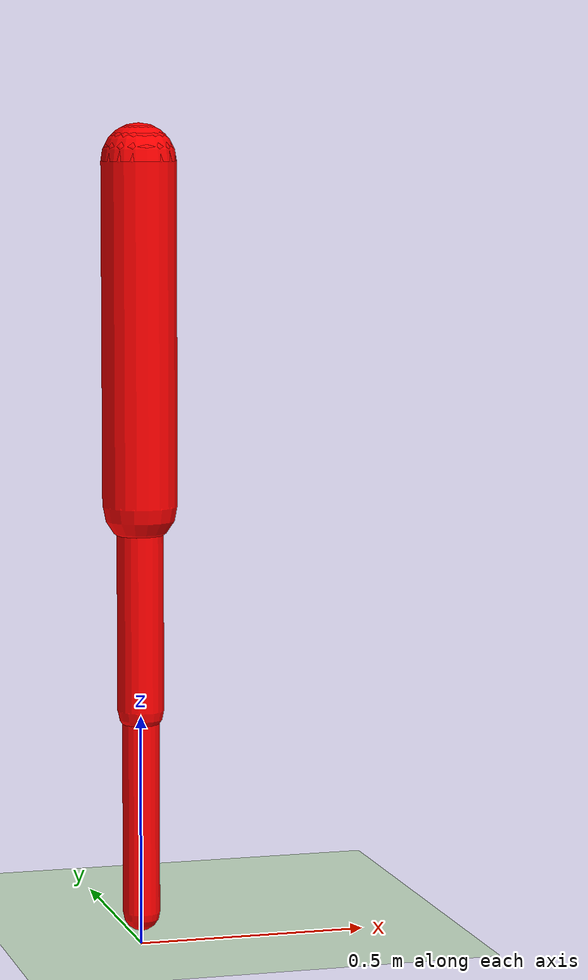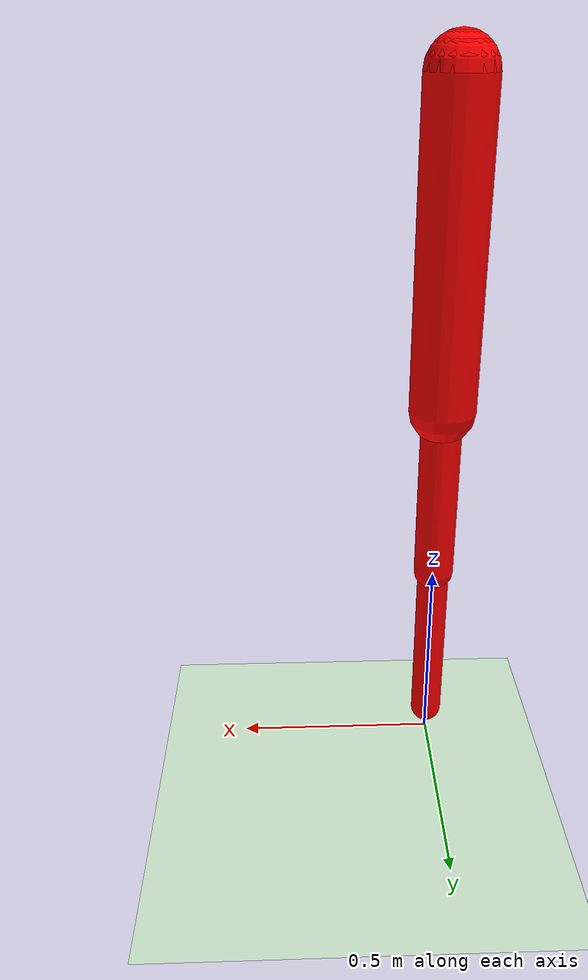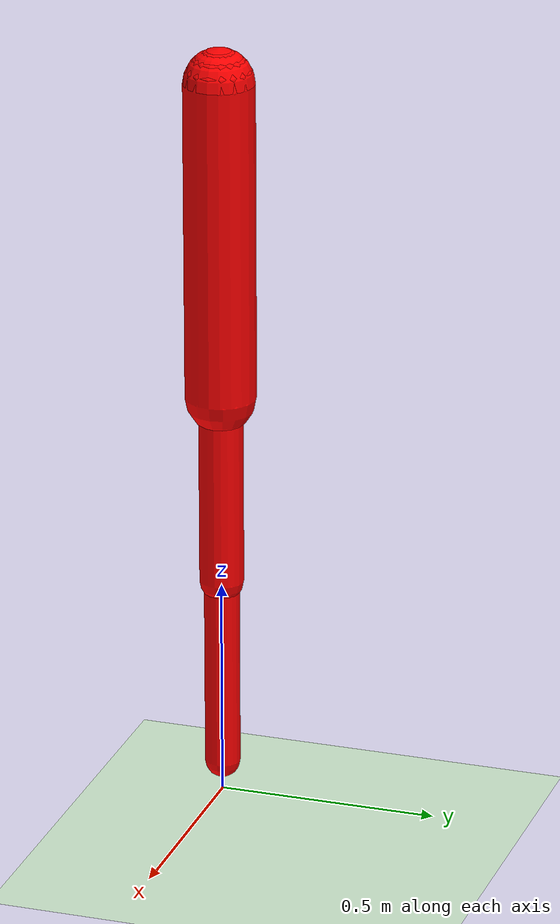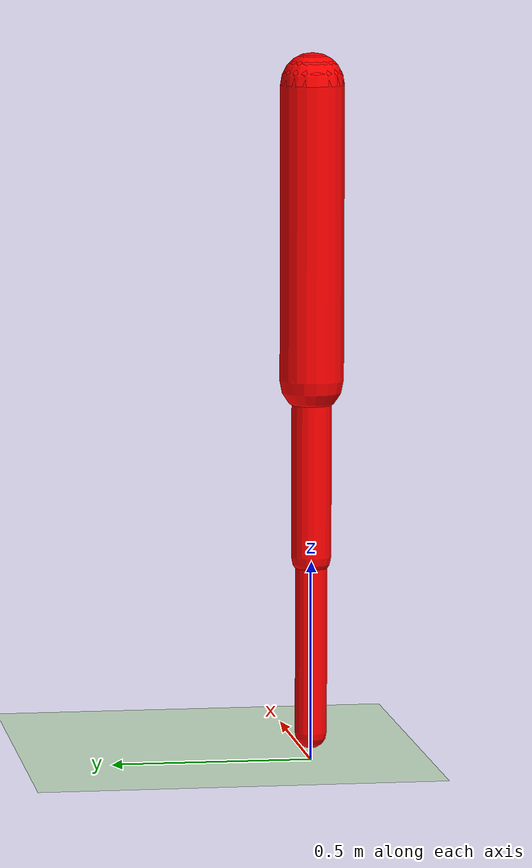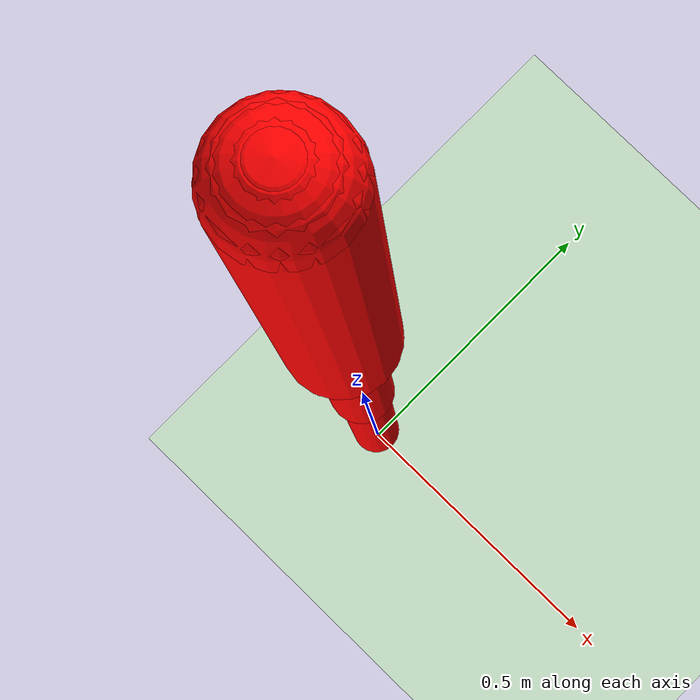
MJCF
<mujoco model="human_stance_rs_model">
  <compiler angle="radian" coordinate="local" inertiafromgeom="false" balanceinertia="false"/>
  <default>
    <joint armature="0.0" damping="0.0" limited="false"/>
    <geom rgba="1 0 0 1"/>
    <motor ctrllimited="false" ctrlrange="-1.0 1.0"/>
  </default>
  <option integrator="Euler" timestep="0.002"/>
  <visual>
    <global azimuth="180"/>
  </visual>
  <worldbody>
    <light cutoff="100" diffuse="1 1 1" dir="-0 0 -1.3" directional="true" exponent="1" pos="0 0 2" specular=".1 .1 .1"/>
    <geom name="floor" pos="0 0 0" rgba="0.8 0.9 0.8 1" size="20 20 .125" type="plane" material="MatPlane"/>

    <body name="shank" pos="0 0 0.0702">
      <site name="ankle_joint" pos="0 0 0"/>
      <joint name="ankle_joint" axis="1 0 0" pos="0 0 0" range="-0.5236 0.5236" type="hinge"/>
      <geom friction="0.0" fromto="0 0 0 0 0 0.4428" name="leg_geom" size="0.04" type="capsule"/>
      <inertial pos="0 0 0.251067600000000" mass="7.44" diaginertia="0.133046068549478 1 1"/>

        <body name="thigh" pos="0 0 0.4428">
          <joint name="knee_joint" axis="1 0 0" pos="0 0 0" range="0 2.618" type="hinge"/>
          <geom friction="0.0" fromto="0 0 0 0 0 0.441000000000000" name="thigh_geom" size="0.05" type="capsule"/>
          <inertial pos="0 0 0.250047000000000" mass="16.0" diaginertia="0.324640131984 1 1"/>

            <body name="torso" pos="0 0 0.441000000000000">
              <joint name="hip_joint" axis="1 0 0" pos="0 0 0" range="-1.047 1.047" type="hinge"/>
              <geom friction="0.0" fromto="0 0 0 0 0 0.730800000000000" name="trunk_geom" size="0.08" type="capsule"/>
              <inertial pos="0 0 0.324518400000000" mass="54.24" diaginertia="3.586022577694309 3 3"/>

              <site name="head" pos="0 0 0.730800000000000"/>

                <body name="head" pos="0 0 0.730800000000000">
                  <geom friction="0.0" name="head_geom" size="0.08" type="sphere"/>
                  <inertial pos="0 0 0" mass="0.0" diaginertia="0 0 0"/>
                </body>
            </body>
        </body>
    </body>

  </worldbody>
  <actuator>
    <motor name="act/ankle_joint" ctrllimited="false" ctrlrange="-1.0 1.0" gear="1.0" joint="ankle_joint"/>
    <motor name="act/knee_joint" ctrllimited="false" ctrlrange="-1.0 1.0" gear="1.0" joint="knee_joint"/>
    <motor name="act/hip_joint" ctrllimited="false" ctrlrange="-1.0 1.0" gear="1.0" joint="hip_joint"/>
  </actuator>
  <sensor>
    <force name="ankle_joint_force" site="ankle_joint"/>
    <torque name="ankle_joint_torque" site="ankle_joint"/>
  </sensor>
    <asset>
        <texture type="skybox" builtin="gradient" rgb1=".4 .5 .6" rgb2="0 0 0"
            width="100" height="100"/>
        <texture builtin="flat" height="1278" mark="cross" markrgb="1 1 1" name="texgeom" random="0.01" rgb1="0.8 0.6 0.4" rgb2="0.8 0.6 0.4" type="cube" width="127"/>
        <texture builtin="checker" height="100" name="texplane" rgb1="0 0 0" rgb2="0.8 0.8 0.8" type="2d" width="100"/>
        <material name="MatPlane" reflectance="0.5" shininess="1" specular="1" texrepeat="60 60" texture="texplane"/>
        <material name="geom" texture="texgeom" texuniform="true"/>
    </asset>
</mujoco>
